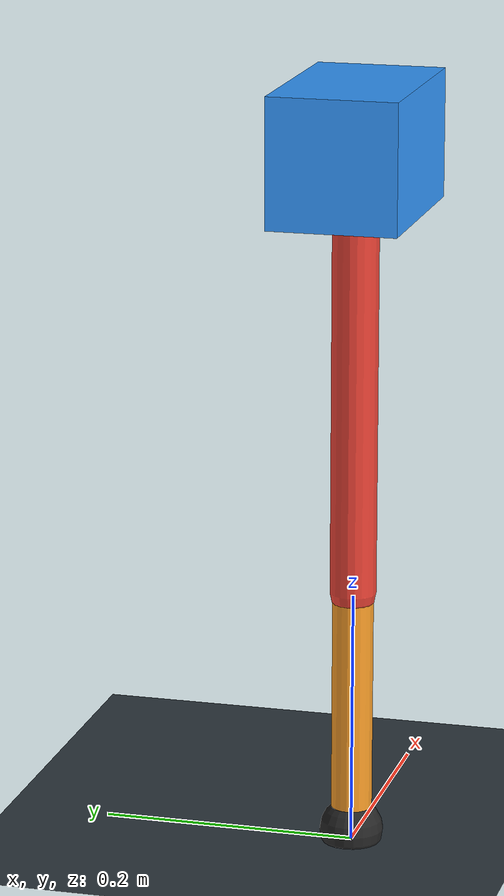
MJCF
<mujoco model="single_axis_two_bar">
  <compiler angle="radian" inertiafromgeom="true"/>
  <option timestep="0.001" integrator="implicitfast" gravity="0 0 -9.81"/>
  <default>
    <joint damping="0.08"/>
    <geom friction="1.2 0.01 0.0001" condim="3"/>
  </default>
  <worldbody>
    <geom name="floor" type="plane" size="5 5 0.1" rgba="0.18 0.22 0.25 1"/>
    <body name="carriage" pos="0 0 0.551593553153291">
      <joint name="pole_slide" type="slide" axis="0 0 1"/>
      <geom name="payload" type="box" size="0.08 0.05 0.05" mass="3.425794887784545" rgba="0.2 0.6 1 1"/>
      <body name="thigh" pos="0 0 0">
        <joint name="hip" type="hinge" axis="0 1 0"/>
        <geom name="thigh_link" type="capsule" fromto="0 0 0 0 0 -0.3488093133377052" size="0.018" mass="0.2485312448615366" rgba="0.9 0.25 0.2 1"/>
        <body name="shank" pos="0 0 -0.3488093133377052">
          <joint name="knee" type="hinge" axis="0 1 0"/>
          <geom name="shank_link" type="capsule" fromto="0 0 0 0 0 -0.1940706383667184" size="0.016" mass="0.13827789425351852" rgba="0.95 0.6 0.15 1"/>
          <geom name="foot" type="sphere" pos="0 0 -0.1940706383667184" size="0.025" mass="0.03" rgba="0.15 0.15 0.15 1"/>
          <site name="toe" pos="0 0 -0.1940706383667184" size="0.008"/>
        </body>
      </body>
    </body>
  </worldbody>
  <actuator>
    <motor name="hip_motor" joint="hip" ctrlrange="-25.57819983797163 25.57819983797163"/>
    <motor name="knee_motor" joint="knee" ctrlrange="-42.78428884910074 42.78428884910074"/>
  </actuator>
</mujoco>
